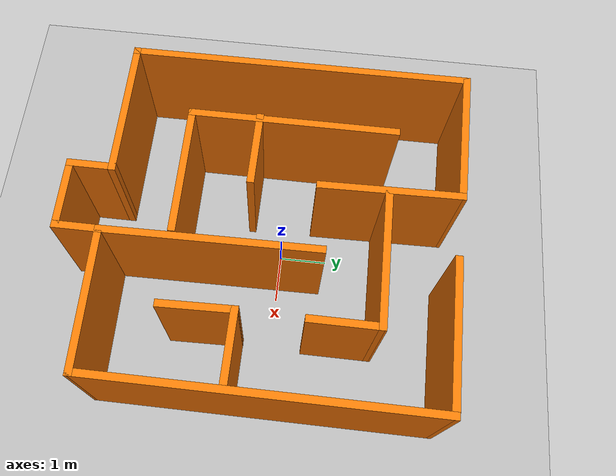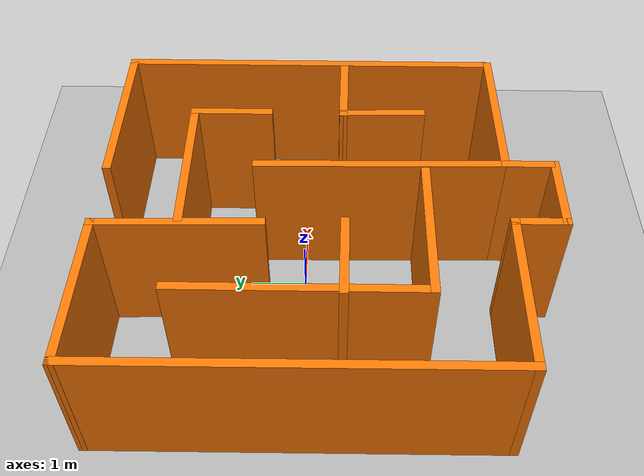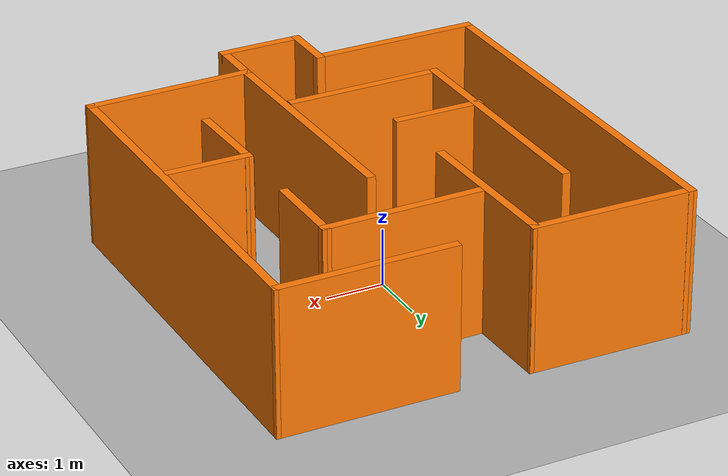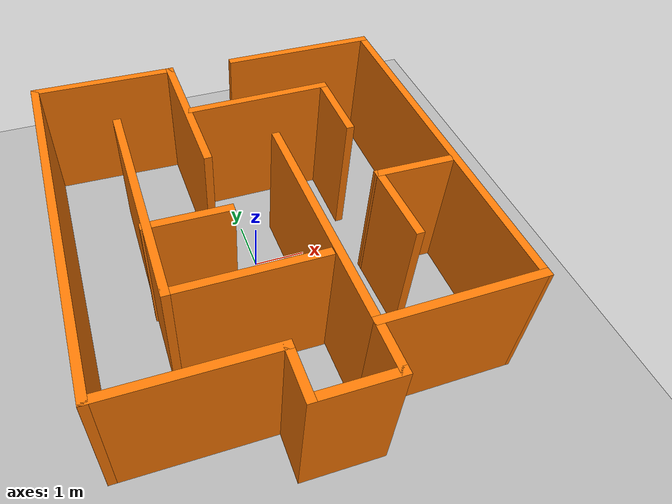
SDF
<?xml version='1.0' encoding='UTF-8'?>
<sdf version="1.7">
  <world name="default">
    <gravity>0 0 -9.8</gravity>
    <physics name="1ms" type="ignored" />
    <plugin filename="gz-sim-physics-system" name="gz::sim::systems::Physics" />
    <plugin filename="gz-sim-user-commands-system" name="gz::sim::systems::UserCommands" />
    <plugin filename="gz-sim-scene-broadcaster-system" name="gz::sim::systems::SceneBroadcaster" />
    <plugin filename="gz-sim-sensors-system" name="gz::sim::systems::Sensors">
      <render_engine>ogre2</render_engine>
    </plugin>
    <plugin filename="gz-sim-imu-system" name="gz::sim::systems::Imu" />
    <include>
      <uri>model://sun</uri>
    </include>
    <model name="ground_plane">
      <static>true</static>
      <link name="link">
        <collision name="collision">
          <geometry>
            <plane>
              <normal>0 0 1</normal>
              <size>100 100</size>
            </plane>
          </geometry>
        </collision>
        <visual name="visual">
          <geometry>
            <plane>
              <normal>0 0 1</normal>
              <size>100 100</size>
            </plane>
          </geometry>
          <material>
            <ambient>0.7 0.7 0.7 1</ambient>
            <diffuse>0.7 0.7 0.7 1</diffuse>
          </material>
        </visual>
      </link>
    </model>
    <model name="maze">
      <pose>0.018548 -0.408785 0 0 -0 0</pose>
      <link name="Wall_0">
        <collision name="Wall_0_Collision">
          <geometry>
            <box>
              <size>7.16354 0.15 2.5</size>
            </box>
          </geometry>
          <pose>0 0 1.25 0 -0 0</pose>
        </collision>
        <visual name="Wall_0_Visual">
          <pose>0 0 1.25 0 -0 0</pose>
          <geometry>
            <box>
              <size>7.16354 0.15 2.5</size>
            </box>
          </geometry>
          <material>
            <script>
              <uri>file://media/materials/scripts/gazebo.material</uri>
              <name>Gazebo/Grey</name>
            </script>
            <ambient>0.996078 0.47451 0.0196078 1</ambient>
          </material>
          <meta>
            <layer>0</layer>
          </meta>
        </visual>
        <pose>-3.47105 0.424285 0 0 -0 -1.56837</pose>
      </link>
      <link name="Wall_1">
        <collision name="Wall_1_Collision">
          <geometry>
            <box>
              <size>2.9659 0.15 2.5</size>
            </box>
          </geometry>
          <pose>0 0 1.25 0 -0 0</pose>
        </collision>
        <visual name="Wall_1_Visual">
          <pose>0 0 1.25 0 -0 0</pose>
          <geometry>
            <box>
              <size>2.9659 0.15 2.5</size>
            </box>
          </geometry>
          <material>
            <script>
              <uri>file://media/materials/scripts/gazebo.material</uri>
              <name>Gazebo/Grey</name>
            </script>
            <ambient>0.996078 0.47451 0.0196078 1</ambient>
          </material>
          <meta>
            <layer>0</layer>
          </meta>
        </visual>
        <pose>-2.05505 -3.08222 0 0 -0 0</pose>
      </link>
      <link name="Wall_10">
        <collision name="Wall_10_Collision">
          <geometry>
            <box>
              <size>1.56713 0.15 2.5</size>
            </box>
          </geometry>
          <pose>0 0 1.25 0 -0 0</pose>
        </collision>
        <visual name="Wall_10_Visual">
          <pose>0 0 1.25 0 -0 0</pose>
          <geometry>
            <box>
              <size>1.56713 0.15 2.5</size>
            </box>
          </geometry>
          <material>
            <script>
              <uri>file://media/materials/scripts/gazebo.material</uri>
              <name>Gazebo/Grey</name>
            </script>
            <ambient>0.996078 0.47451 0.0196078 1</ambient>
          </material>
          <meta>
            <layer>0</layer>
          </meta>
        </visual>
        <pose>2.02895 -0.974715 0 0 -0 -1.5461</pose>
      </link>
      <link name="Wall_12">
        <collision name="Wall_12_Collision">
          <geometry>
            <box>
              <size>4.47041 0.15 2.5</size>
            </box>
          </geometry>
          <pose>0 0 1.25 0 -0 0</pose>
        </collision>
        <visual name="Wall_12_Visual">
          <pose>0 0 1.25 0 -0 0</pose>
          <geometry>
            <box>
              <size>4.47041 0.15 2.5</size>
            </box>
          </geometry>
          <material>
            <script>
              <uri>file://media/materials/scripts/gazebo.material</uri>
              <name>Gazebo/Grey</name>
            </script>
            <ambient>0.996078 0.47451 0.0196078 1</ambient>
          </material>
          <meta>
            <layer>0</layer>
          </meta>
        </visual>
        <pose>0.674952 -0.922215 0 0 -0 -1.55807</pose>
      </link>
      <link name="Wall_14">
        <collision name="Wall_14_Collision">
          <geometry>
            <box>
              <size>4.34776 0.15 2.5</size>
            </box>
          </geometry>
          <pose>0 0 1.25 0 -0 0</pose>
        </collision>
        <visual name="Wall_14_Visual">
          <pose>0 0 1.25 0 -0 0</pose>
          <geometry>
            <box>
              <size>4.34776 0.15 2.5</size>
            </box>
          </geometry>
          <material>
            <script>
              <uri>file://media/materials/scripts/gazebo.material</uri>
              <name>Gazebo/Grey</name>
            </script>
            <ambient>0.996078 0.47451 0.0196078 1</ambient>
          </material>
          <meta>
            <layer>0</layer>
          </meta>
        </visual>
        <pose>-2.08155 0.415285 0 0 -0 -1.5708</pose>
      </link>
      <link name="Wall_15">
        <collision name="Wall_15_Collision">
          <geometry>
            <box>
              <size>2.75 0.15 2.5</size>
            </box>
          </geometry>
          <pose>0 0 1.25 0 -0 0</pose>
        </collision>
        <visual name="Wall_15_Visual">
          <pose>0 0 1.25 0 -0 0</pose>
          <geometry>
            <box>
              <size>2.75 0.15 2.5</size>
            </box>
          </geometry>
          <material>
            <script>
              <uri>file://media/materials/scripts/gazebo.material</uri>
              <name>Gazebo/Grey</name>
            </script>
            <ambient>0.996078 0.47451 0.0196078 1</ambient>
          </material>
          <meta>
            <layer>0</layer>
          </meta>
        </visual>
        <pose>-0.781548 -1.68321 0 0 -0 0</pose>
      </link>
      <link name="Wall_17">
        <collision name="Wall_17_Collision">
          <geometry>
            <box>
              <size>1.5841 0.15 2.5</size>
            </box>
          </geometry>
          <pose>0 0 1.25 0 -0 0</pose>
        </collision>
        <visual name="Wall_17_Visual">
          <pose>0 0 1.25 0 -0 0</pose>
          <geometry>
            <box>
              <size>1.5841 0.15 2.5</size>
            </box>
          </geometry>
          <material>
            <script>
              <uri>file://media/materials/scripts/gazebo.material</uri>
              <name>Gazebo/Grey</name>
            </script>
            <ambient>0.996078 0.47451 0.0196078 1</ambient>
          </material>
          <meta>
            <layer>0</layer>
          </meta>
        </visual>
        <pose>-1.39955 -0.292715 0 0 -0 -0.011854</pose>
      </link>
      <link name="Wall_19">
        <collision name="Wall_19_Collision">
          <geometry>
            <box>
              <size>2.86099 0.15 2.5</size>
            </box>
          </geometry>
          <pose>0 0 1.25 0 -0 0</pose>
        </collision>
        <visual name="Wall_19_Visual">
          <pose>0 0 1.25 0 -0 0</pose>
          <geometry>
            <box>
              <size>2.86099 0.15 2.5</size>
            </box>
          </geometry>
          <material>
            <script>
              <uri>file://media/materials/scripts/gazebo.material</uri>
              <name>Gazebo/Grey</name>
            </script>
            <ambient>0.996078 0.47451 0.0196078 1</ambient>
          </material>
          <meta>
            <layer>0</layer>
          </meta>
        </visual>
        <pose>-2.12455 3.90478 0 0 -0 -0.019186</pose>
      </link>
      <link name="Wall_2">
        <collision name="Wall_2_Collision">
          <geometry>
            <box>
              <size>1 0.15 2.5</size>
            </box>
          </geometry>
          <pose>0 0 1.25 0 -0 0</pose>
        </collision>
        <visual name="Wall_2_Visual">
          <pose>0 0 1.25 0 -0 0</pose>
          <geometry>
            <box>
              <size>1 0.15 2.5</size>
            </box>
          </geometry>
          <material>
            <script>
              <uri>file://media/materials/scripts/gazebo.material</uri>
              <name>Gazebo/Grey</name>
            </script>
            <ambient>0.996078 0.47451 0.0196078 1</ambient>
          </material>
          <meta>
            <layer>0</layer>
          </meta>
        </visual>
        <pose>-0.647548 -3.50721 0 0 -0 -1.5708</pose>
      </link>
      <link name="Wall_20">
        <collision name="Wall_20_Collision">
          <geometry>
            <box>
              <size>2.9495 0.15 2.5</size>
            </box>
          </geometry>
          <pose>0 0 1.25 0 -0 0</pose>
        </collision>
        <visual name="Wall_20_Visual">
          <pose>0 0 1.25 0 -0 0</pose>
          <geometry>
            <box>
              <size>2.9495 0.15 2.5</size>
            </box>
          </geometry>
          <material>
            <script>
              <uri>file://media/materials/scripts/gazebo.material</uri>
              <name>Gazebo/Grey</name>
            </script>
            <ambient>0.996078 0.47451 0.0196078 1</ambient>
          </material>
          <meta>
            <layer>0</layer>
          </meta>
        </visual>
        <pose>-0.743048 2.47928 0 0 -0 -1.55186</pose>
      </link>
      <link name="Wall_22">
        <collision name="Wall_22_Collision">
          <geometry>
            <box>
              <size>2.84353 0.15 2.5</size>
            </box>
          </geometry>
          <pose>0 0 1.25 0 -0 0</pose>
        </collision>
        <visual name="Wall_22_Visual">
          <pose>0 0 1.25 0 -0 0</pose>
          <geometry>
            <box>
              <size>2.84353 0.15 2.5</size>
            </box>
          </geometry>
          <material>
            <script>
              <uri>file://media/materials/scripts/gazebo.material</uri>
              <name>Gazebo/Grey</name>
            </script>
            <ambient>0.996078 0.47451 0.0196078 1</ambient>
          </material>
          <meta>
            <layer>0</layer>
          </meta>
        </visual>
        <pose>0.681952 2.45329 0 0 -0 0.006313</pose>
      </link>
      <link name="Wall_23">
        <collision name="Wall_23_Collision">
          <geometry>
            <box>
              <size>1.5 0.15 2.5</size>
            </box>
          </geometry>
          <pose>0 0 1.25 0 -0 0</pose>
        </collision>
        <visual name="Wall_23_Visual">
          <pose>0 0 1.25 0 -0 0</pose>
          <geometry>
            <box>
              <size>1.5 0.15 2.5</size>
            </box>
          </geometry>
          <material>
            <script>
              <uri>file://media/materials/scripts/gazebo.material</uri>
              <name>Gazebo/Grey</name>
            </script>
            <ambient>0.996078 0.47451 0.0196078 1</ambient>
          </material>
          <meta>
            <layer>0</layer>
          </meta>
        </visual>
        <pose>2.02845 1.78679 0 0 -0 -1.5708</pose>
      </link>
      <link name="Wall_3">
        <collision name="Wall_3_Collision">
          <geometry>
            <box>
              <size>1.5 0.15 2.5</size>
            </box>
          </geometry>
          <pose>0 0 1.25 0 -0 0</pose>
        </collision>
        <visual name="Wall_3_Visual">
          <pose>0 0 1.25 0 -0 0</pose>
          <geometry>
            <box>
              <size>1.5 0.15 2.5</size>
            </box>
          </geometry>
          <material>
            <script>
              <uri>file://media/materials/scripts/gazebo.material</uri>
              <name>Gazebo/Grey</name>
            </script>
            <ambient>0.996078 0.47451 0.0196078 1</ambient>
          </material>
          <meta>
            <layer>0</layer>
          </meta>
        </visual>
        <pose>0.027452 -3.93221 0 0 -0 0</pose>
      </link>
      <link name="Wall_4">
        <collision name="Wall_4_Collision">
          <geometry>
            <box>
              <size>1 0.15 2.5</size>
            </box>
          </geometry>
          <pose>0 0 1.25 0 -0 0</pose>
        </collision>
        <visual name="Wall_4_Visual">
          <pose>0 0 1.25 0 -0 0</pose>
          <geometry>
            <box>
              <size>1 0.15 2.5</size>
            </box>
          </geometry>
          <material>
            <script>
              <uri>file://media/materials/scripts/gazebo.material</uri>
              <name>Gazebo/Grey</name>
            </script>
            <ambient>0.996078 0.47451 0.0196078 1</ambient>
          </material>
          <meta>
            <layer>0</layer>
          </meta>
        </visual>
        <pose>0.702452 -3.50721 0 0 -0 1.5708</pose>
      </link>
      <link name="Wall_5">
        <collision name="Wall_5_Collision">
          <geometry>
            <box>
              <size>2.92787 0.15 2.5</size>
            </box>
          </geometry>
          <pose>0 0 1.25 0 -0 0</pose>
        </collision>
        <visual name="Wall_5_Visual">
          <pose>0 0 1.25 0 -0 0</pose>
          <geometry>
            <box>
              <size>2.92787 0.15 2.5</size>
            </box>
          </geometry>
          <material>
            <script>
              <uri>file://media/materials/scripts/gazebo.material</uri>
              <name>Gazebo/Grey</name>
            </script>
            <ambient>0.996078 0.47451 0.0196078 1</ambient>
          </material>
          <meta>
            <layer>0</layer>
          </meta>
        </visual>
        <pose>2.09145 -3.06472 0 0 -0 0.012598</pose>
      </link>
      <link name="Wall_6">
        <collision name="Wall_6_Collision">
          <geometry>
            <box>
              <size>7 0.15 2.5</size>
            </box>
          </geometry>
          <pose>0 0 1.25 0 -0 0</pose>
        </collision>
        <visual name="Wall_6_Visual">
          <pose>0 0 1.25 0 -0 0</pose>
          <geometry>
            <box>
              <size>7 0.15 2.5</size>
            </box>
          </geometry>
          <material>
            <script>
              <uri>file://media/materials/scripts/gazebo.material</uri>
              <name>Gazebo/Grey</name>
            </script>
            <ambient>0.996078 0.47451 0.0196078 1</ambient>
          </material>
          <meta>
            <layer>0</layer>
          </meta>
        </visual>
        <pose>3.48045 0.377785 0 0 -0 1.5708</pose>
      </link>
      <link name="Wall_7">
        <collision name="Wall_7_Collision">
          <geometry>
            <box>
              <size>3.07143 0.15 2.5</size>
            </box>
          </geometry>
          <pose>0 0 1.25 0 -0 0</pose>
        </collision>
        <visual name="Wall_7_Visual">
          <pose>0 0 1.25 0 -0 0</pose>
          <geometry>
            <box>
              <size>3.07143 0.15 2.5</size>
            </box>
          </geometry>
          <material>
            <script>
              <uri>file://media/materials/scripts/gazebo.material</uri>
              <name>Gazebo/Grey</name>
            </script>
            <ambient>0.996078 0.47451 0.0196078 1</ambient>
          </material>
          <meta>
            <layer>0</layer>
          </meta>
        </visual>
        <pose>2.01995 3.81428 0 0 -0 3.13372</pose>
      </link>
      <link name="Wall_9">
        <collision name="Wall_9_Collision">
          <geometry>
            <box>
              <size>1.47936 0.15 2.5</size>
            </box>
          </geometry>
          <pose>0 0 1.25 0 -0 0</pose>
        </collision>
        <visual name="Wall_9_Visual">
          <pose>0 0 1.25 0 -0 0</pose>
          <geometry>
            <box>
              <size>1.47936 0.15 2.5</size>
            </box>
          </geometry>
          <material>
            <script>
              <uri>file://media/materials/scripts/gazebo.material</uri>
              <name>Gazebo/Grey</name>
            </script>
            <ambient>0.996078 0.47451 0.0196078 1</ambient>
          </material>
          <meta>
            <layer>0</layer>
          </meta>
        </visual>
        <pose>2.67595 -0.275215 0 0 -0 3.12805</pose>
      </link>
      <static>1</static>
    </model>
  </world>
</sdf>
